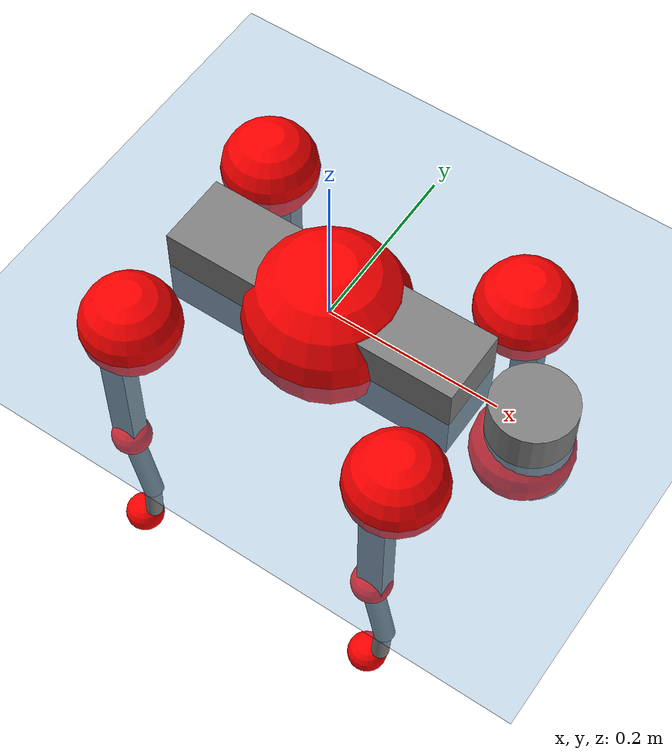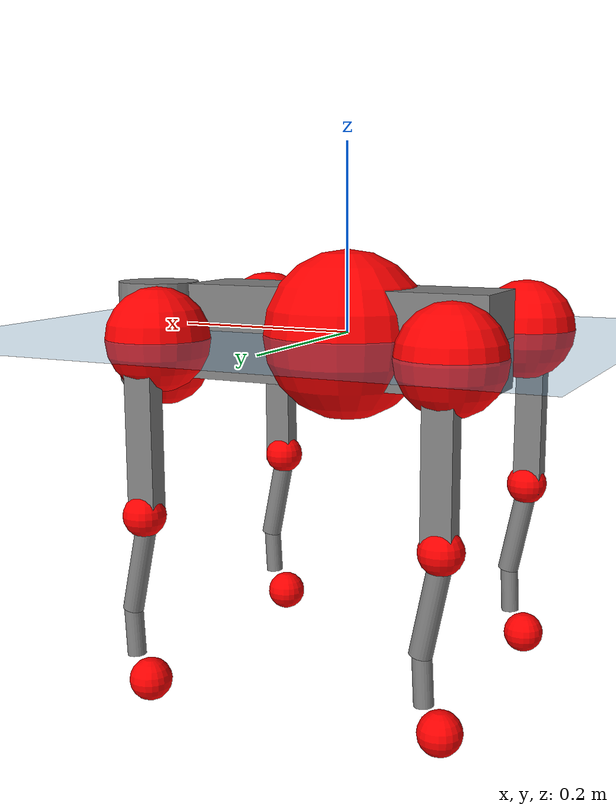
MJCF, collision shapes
<mujoco model="go2">
  <compiler angle="radian" assetdir="assets" balanceinertia="true" inertiafromgeom="false"/>

  <option timestep="0.005" density="1.2" viscosity="2e-05"/>

  <size nkey="1"/>

  <visual>
    <quality shadowsize="8192"/>
    <map shadowclip="0.5"/>
  </visual>

  <default>
    <default class="/">
      <geom contype="0" conaffinity="0" group="1" solref="-1000 -80"/>
      <site size="0.01 0.005 0.005" group="5"/>
      <general forcelimited="true" biastype="affine" gainprm="20" biasprm="0 -20 -0.5"/>
      <default class="go2">
        <joint armature="0.01" damping="0.01" frictionloss="0.2"/>
        <geom condim="1" margin="0.001"/>
        <default class="visual">
          <geom type="mesh" group="2"/>
        </default>
        <default class="collision">
          <geom group="3"/>
          <default class="foot">
            <geom size="0.022 0 0" condim="6" priority="1" friction="0.8 0.02 0.01" solimp="0.015 1 0.022"/>
          </default>
        </default>
        <default class="reward_collision_sphere">
          <geom group="5" rgba="1 0 0 1"/>
        </default>
      </default>
    </default>
  </default>

  <asset>
    <texture type="skybox" colorspace="auto" name="//unnamed_texture_0" builtin="gradient" rgb1="0.95 0.95 0.95" rgb2="0.95 0.95 0.95" width="100" height="600"/>
    <texture type="2d" colorspace="auto" name="texplane" builtin="checker" rgb1="0.345 0.575 0.748" rgb2="0.345 0.575 0.748" markrgb="1 1 1" width="512" height="512"/>
    <material name="MatPlane" class="/" texture="texplane" texuniform="true" texrepeat="2 2" specular="0.9"/>
    <material name="metal" class="/" rgba="0.9 0.95 0.95 1"/>
    <material name="black" class="/" rgba="0 0 0 1"/>
    <material name="white" class="/"/>
    <material name="gray" class="/" rgba="0.671705 0.692426 0.77427 1"/>
    <mesh name="base_0" class="/" file="base_0.obj"/>
    <mesh name="base_1" class="/" file="base_1.obj"/>
    <mesh name="base_2" class="/" file="base_2.obj"/>
    <mesh name="base_3" class="/" file="base_3.obj"/>
    <mesh name="base_4" class="/" file="base_4.obj"/>
    <mesh name="hip_0" class="/" file="hip_0.obj"/>
    <mesh name="hip_1" class="/" file="hip_1.obj"/>
    <mesh name="thigh_0" class="/" file="thigh_0.obj"/>
    <mesh name="thigh_1" class="/" file="thigh_1.obj"/>
    <mesh name="thigh_mirror_0" class="/" file="thigh_mirror_0.obj"/>
    <mesh name="thigh_mirror_1" class="/" file="thigh_mirror_1.obj"/>
    <mesh name="calf_0" class="/" file="calf_0.obj"/>
    <mesh name="calf_1" class="/" file="calf_1.obj"/>
    <mesh name="calf_mirror_0" class="/" file="calf_mirror_0.obj"/>
    <mesh name="calf_mirror_1" class="/" file="calf_mirror_1.obj"/>
    <mesh name="foot" class="/" file="foot.obj"/>
  </asset>

  <worldbody>
    <geom name="floor" class="/" size="100 100 0.125" type="plane" group="0" material="MatPlane"/>
    <light name="toplight_shadow" class="/" pos="0 0 5" dir="0.0990148 0.0990148 -0.990148" type="directional" ambient="0.04 0.04 0.04" diffuse="0.55 0.55 0.55" specular="0.12 0.12 0.12"/>
    <light name="toplight_fill" class="/" pos="0 0 5" dir="0.0990148 0.0990148 -0.990148" type="directional" castshadow="false" ambient="0.04 0.04 0.04" diffuse="0.3 0.3 0.3" specular="0.08 0.08 0.08"/>
    <body name="trunk" childclass="go2" pos="0.000921466 -0.00174324 -0.00259351" quat="1 -0.000365597 -0.000396042 -0.000664387">
      <inertial pos="0.0151532 0.00174691 -0.0032257" quat="-0.00416351 0.719544 -0.00886223 0.694378" mass="5.44433" diaginertia="0.046247 0.129315 0.0111012"/>
      <joint name="//unnamed_joint_0" type="free" armature="0" damping="0" frictionloss="0"/>
      <geom name="//unnamed_geom_1" class="visual" material="black" mesh="base_0"/>
      <geom name="//unnamed_geom_2" class="visual" material="black" mesh="base_1"/>
      <geom name="//unnamed_geom_3" class="visual" material="black" mesh="base_2"/>
      <geom name="//unnamed_geom_4" class="visual" material="white" mesh="base_3"/>
      <geom name="//unnamed_geom_5" class="visual" material="gray" mesh="base_4"/>
      <geom name="trunk_1" class="collision" size="0.171904 0.0427247 0.0520921" type="box"/>
      <geom name="trunk_2" class="collision" size="0.0456948 0.0411253" pos="0.239104 0 0.00849814" type="cylinder"/>
      <geom name="trunk_3" class="collision" size="0.0429531" pos="0.245816 0 -0.0509888"/>
      <geom name="//unnamed_geom_9" class="reward_collision_sphere" size="0.0913897"/>
      <geom name="//unnamed_geom_10" class="reward_collision_sphere" size="0.0548338" pos="0.234909 0 -0.0382416"/>
      <site name="imu" pos="-0.0232464 -0.00225803 0.0336248" size="0.00913897"/>
      <camera name="track" pos="0 -2.10583 0" quat="0.707107 0.707107 0 0" mode="trackcom"/>
      <camera name="ego_camera" pos="0.261756 0 0.0382416" quat="-0.5 -0.5 0.5 0.5"/>
      <body name="FL_hip" pos="0.160436 0.0475442 0.000226019" quat="1 0.000201731 -7.93765e-05 0.000129469">
        <inertial pos="-0.00378897 0.00169337 -0.000750447" quat="0.492953 0.500694 0.515776 0.490181" mass="0.523655" diaginertia="0.000377612 0.000763438 0.000219517"/>
        <joint name="FL_hip_joint" pos="0 0 0" axis="0.999941 -0.010614 -0.00228625" range="-1.09972 1.01843" armature="0.0094379" damping="0.0192199" frictionloss="0.189186"/>
        <geom name="//unnamed_geom_11" class="visual" material="metal" mesh="hip_0"/>
        <geom name="//unnamed_geom_12" class="visual" material="gray" mesh="hip_1"/>
        <geom name="//unnamed_geom_13" class="collision" size="0.0420392 0.0182779" pos="0 0.0842331 0" quat="0.707107 0.707107 0 0" type="cylinder"/>
        <geom name="//unnamed_geom_14" class="reward_collision_sphere" size="0.0548338" pos="0 0.073704 0"/>
        <body name="FL_thigh" pos="0.000566288 0.102851 0.000911832" quat="0.999999 0.000723069 0.000434335 0.000572647">
          <inertial pos="-0.00267474 -0.0256583 -0.0284234" quat="0.826372 0.0850801 -0.032718 0.555698" mass="0.898329" diaginertia="0.00245846 0.00734434 0.000386838"/>
          <joint name="FL_thigh_joint" pos="0 0 0" axis="0.00515399 0.999965 0.00661646" stiffness="0.0145175" range="-1.60393 3.50725" armature="0.0083399" damping="0.0163285" frictionloss="0.161228"/>
          <geom name="//unnamed_geom_15" class="visual" material="metal" mesh="thigh_0"/>
          <geom name="//unnamed_geom_16" class="visual" material="gray" mesh="thigh_1"/>
          <geom name="//unnamed_geom_17" class="collision" size="0.09733 0.0111952 0.0155362" pos="0 0 -0.0905052" quat="0.707107 0 0.707107 0" type="box"/>
          <body name="FL_calf" pos="0.00215015 0.00106016 -0.182678" quat="1 -1.82078e-05 -0.000182998 -2.44592e-05">
            <inertial pos="0.00555058 -0.00268144 -0.120622" quat="0.705752 0.00243843 -0.0161692 0.70827" mass="0.185693" diaginertia="0.00060724 0.00182725 2.28688e-05"/>
            <joint name="FL_calf_joint" pos="0 0 0" axis="0.00115385 0.999998 0.00156084" stiffness="0.00619999" range="-2.76594 -0.824913" armature="0.00794193" damping="0.0058266" frictionloss="0.20715"/>
            <geom name="//unnamed_geom_18" class="visual" material="gray" mesh="calf_0"/>
            <geom name="//unnamed_geom_19" class="visual" material="black" mesh="calf_1"/>
            <geom name="FL_calf0" class="collision" size="0.0109668 0.0548338" pos="0.0067117 0 -0.0509888" quat="0.994493 0 -0.104807 0" type="cylinder"/>
            <geom name="//unnamed_geom_21" class="collision" size="0.0100529 0.0297016" pos="0.0167792 0 -0.125772" quat="0.999688 0 0.0249974 0" type="cylinder"/>
            <geom name="//unnamed_geom_22" class="visual" pos="0 0 -0.18101" quat="1 0 0 0" material="black" mesh="foot"/>
            <geom name="FL_foot" class="foot" size="0.0163388" pos="-0.00167792 0 -0.18101"/>
            <geom name="//unnamed_geom_24" class="reward_collision_sphere" size="0.0228474"/>
            <geom name="//unnamed_geom_25" class="reward_collision_sphere" size="0.0228474" pos="-0.00167792 0 -0.18101"/>
            <site name="FL_foot" class="foot" pos="-0.00167792 0 -0.18101" size="0.00913897"/>
          </body>
        </body>
      </body>
      <body name="FR_hip" pos="0.164028 -0.0511355 -0.000342083" quat="1 -0.000315689 -0.000663943 0.000187471">
        <inertial pos="-0.00493268 0.000834302 -0.00310776" quat="0.497172 0.504012 0.499968 0.498822" mass="0.493929" diaginertia="0.000356444 0.000771198 0.000217296"/>
        <joint name="FR_hip_joint" pos="0 0 0" axis="0.999941 0.00847782 0.00683254" stiffness="0.0153116" range="-1.03521 1.05164" armature="0.00792627" damping="0.0186793" frictionloss="0.205484"/>
        <geom name="//unnamed_geom_26" class="visual" pos="0 1.76932e-09 7.58899e-08" quat="4.63268e-05 1 0 0" material="metal" mesh="hip_0"/>
        <geom name="//unnamed_geom_27" class="visual" pos="0 2.86828e-09 -1.87705e-07" quat="4.63268e-05 1 0 0" material="gray" mesh="hip_1"/>
        <geom name="//unnamed_geom_28" class="collision" size="0.0420392 0.0182779" pos="0 -0.0842331 0" quat="0.707107 0.707107 0 0" type="cylinder"/>
        <geom name="//unnamed_geom_29" class="reward_collision_sphere" size="0.0548338" pos="0 -0.073704 0"/>
        <body name="FR_thigh" pos="-0.00217781 -0.100727 0.00359783" quat="1 -2.44964e-06 2.76409e-05 1.70038e-05">
          <inertial pos="-0.000555397 0.0216879 -0.0287419" quat="0.562072 -0.0199049 0.0790901 0.823057" mass="0.902405" diaginertia="0.00240701 0.00750875 0.000386872"/>
          <joint name="FR_thigh_joint" pos="0 0 0" axis="-0.000709003 -0.999999 -0.00121707" range="-3.47469 1.61927" armature="0.00931642" damping="0.0071025" frictionloss="0.164201"/>
          <geom name="//unnamed_geom_30" class="visual" material="metal" mesh="thigh_mirror_0"/>
          <geom name="//unnamed_geom_31" class="visual" material="gray" mesh="thigh_mirror_1"/>
          <geom name="//unnamed_geom_32" class="collision" size="0.09733 0.0111952 0.0155362" pos="0 0 -0.0905052" quat="0.707107 0 0.707107 0" type="box"/>
          <body name="FR_calf" pos="-0.00347783 -0.000254678 -0.180606" quat="0.999999 3.67694e-05 0.00078828 -0.000673703">
            <inertial pos="0.00329277 0.00245367 -0.120947" quat="0.710933 -0.0122101 -0.00221511 0.70315" mass="0.18011" diaginertia="0.000583464 0.00188144 2.23633e-05"/>
            <joint name="FR_calf_joint" pos="0 0 0" axis="-0.00406303 -0.999968 0.00693362" range="0.88901 2.76777" armature="0.00862708" damping="0.0104343" frictionloss="0.157938"/>
            <geom name="//unnamed_geom_33" class="visual" material="gray" mesh="calf_mirror_0"/>
            <geom name="//unnamed_geom_34" class="visual" material="black" mesh="calf_mirror_1"/>
            <geom name="FR_calf0" class="collision" size="0.0118807 0.0548338" pos="0.00838962 0 -0.0509888" quat="0.995004 0 -0.0998334 0" type="cylinder"/>
            <geom name="//unnamed_geom_36" class="collision" size="0.0100529 0.0297016" pos="0.0167792 0 -0.125772" quat="0.999688 0 0.0249974 0" type="cylinder"/>
            <geom name="//unnamed_geom_37" class="visual" pos="0 0 -0.18101" quat="1 0 0 0" material="black" mesh="foot"/>
            <geom name="FR_foot" class="foot" size="0.0218209" pos="-0.00167792 0 -0.18101"/>
            <geom name="//unnamed_geom_39" class="reward_collision_sphere" size="0.0228474"/>
            <geom name="//unnamed_geom_40" class="reward_collision_sphere" size="0.0228474" pos="-0.00167792 0 -0.18101"/>
            <site name="FR_foot" class="foot" pos="-0.00167792 0 -0.18101" size="0.00913897"/>
          </body>
        </body>
      </body>
      <body name="RL_hip" pos="-0.163096 0.0513809 -0.0011782" quat="1 -0.000172959 0.000229597 4.74575e-05">
        <inertial pos="0.00625869 0.000605276 0.00200541" quat="0.504236 0.489986 0.502178 0.503465" mass="0.513828" diaginertia="0.000346996 0.000720991 0.000211377"/>
        <joint name="RL_hip_joint" pos="0 0 0" axis="-0.999686 -0.0202562 -0.014734" range="-1.04649 0.98911" armature="0.00819053" damping="0.0146015" frictionloss="0.191563"/>
        <geom name="//unnamed_geom_41" class="visual" pos="9.45352e-11 0 1.85311e-08" quat="4.63268e-05 0 1 0" material="metal" mesh="hip_0"/>
        <geom name="//unnamed_geom_42" class="visual" pos="1.53253e-10 0 1.64344e-08" quat="4.63268e-05 0 1 0" material="gray" mesh="hip_1"/>
        <geom name="//unnamed_geom_43" class="collision" size="0.0420392 0.0182779" pos="0 0.0842331 0" quat="0.707107 0.707107 0 0" type="cylinder"/>
        <geom name="//unnamed_geom_44" class="reward_collision_sphere" size="0.0548338" pos="0 0.073704 0"/>
        <body name="RL_thigh" pos="0.000233593 0.0972928 0.00262967" quat="1 -0.000374064 0.000133775 0.000138848">
          <inertial pos="-0.00354049 -0.0261951 -0.0251076" quat="0.831158 0.0803048 -0.0198925 0.549847" mass="0.89306" diaginertia="0.0023882 0.00774167 0.000386378"/>
          <joint name="RL_thigh_joint" pos="0 0 0" axis="-0.0117702 0.999931 -0.000646432" range="-0.539533 4.5535" armature="0.00996142" damping="0.0126495" frictionloss="0.161487"/>
          <geom name="//unnamed_geom_45" class="visual" material="metal" mesh="thigh_0"/>
          <geom name="//unnamed_geom_46" class="visual" material="gray" mesh="thigh_1"/>
          <geom name="//unnamed_geom_47" class="collision" size="0.09733 0.0111952 0.0155362" pos="0 0 -0.0905052" quat="0.707107 0 0.707107 0" type="box"/>
          <body name="RL_calf" pos="-0.00169819 -0.000983127 -0.180638" quat="0.999999 -2.17717e-05 -0.000185456 0.0012744">
            <inertial pos="0.00421755 -0.000299017 -0.12046" quat="0.710427 0.00011774 -0.00465252 0.703755" mass="0.181374" diaginertia="0.000619007 0.00189639 2.36958e-05"/>
            <joint name="RL_calf_joint" pos="0 0 0" axis="0.00180597 0.999997 0.00180438" range="-2.75801 -0.85326" armature="0.00819371" damping="0.0112647" frictionloss="0.165345"/>
            <geom name="//unnamed_geom_48" class="visual" material="gray" mesh="calf_0"/>
            <geom name="//unnamed_geom_49" class="visual" material="black" mesh="calf_1"/>
            <geom name="RL_calf0" class="collision" size="0.0118807 0.0548338" pos="0.00838962 0 -0.0509888" quat="0.995004 0 -0.0998334 0" type="cylinder"/>
            <geom name="//unnamed_geom_51" class="collision" size="0.0100529 0.0297016" pos="0.0167792 0 -0.125772" quat="0.999688 0 0.0249974 0" type="cylinder"/>
            <geom name="//unnamed_geom_52" class="visual" pos="0 0 -0.18101" quat="1 0 0 0" material="black" mesh="foot"/>
            <geom name="RL_foot" class="foot" size="0.0188606" pos="-0.00167792 0 -0.18101"/>
            <geom name="//unnamed_geom_54" class="reward_collision_sphere" size="0.0228474"/>
            <geom name="//unnamed_geom_55" class="reward_collision_sphere" size="0.0228474" pos="-0.00167792 0 -0.18101"/>
            <site name="RL_foot" class="foot" pos="-0.00167792 0 -0.18101" size="0.00913897"/>
          </body>
        </body>
      </body>
      <body name="RR_hip" pos="-0.160666 -0.0498449 0.00123924" quat="0.999999 0.000656868 -0.000463926 -0.00102844">
        <inertial pos="0.00413699 -0.00445221 -1.80451e-05" quat="0.50061 0.494051 0.500372 0.504907" mass="0.498199" diaginertia="0.000354844 0.000770792 0.00019912"/>
        <joint name="RR_hip_joint" pos="0 0 0" axis="-1 -7.20505e-05 3.20262e-05" range="-1.08174 1.0811" armature="0.00875736" damping="0.00734478" frictionloss="0.201773"/>
        <geom name="//unnamed_geom_56" class="visual" pos="-8.71282e-11 1.76932e-09 -5.73588e-08" quat="2.14617e-09 4.63268e-05 4.63268e-05 -1" material="metal" mesh="hip_0"/>
        <geom name="//unnamed_geom_57" class="visual" pos="-1.71574e-10 2.86828e-09 2.04139e-07" quat="2.14617e-09 4.63268e-05 4.63268e-05 -1" material="gray" mesh="hip_1"/>
        <geom name="//unnamed_geom_58" class="collision" size="0.0420392 0.0182779" pos="0 -0.0842331 0" quat="0.707107 0.707107 0 0" type="cylinder"/>
        <geom name="//unnamed_geom_59" class="reward_collision_sphere" size="0.0548338" pos="0 -0.073704 0"/>
        <body name="RR_thigh" pos="-0.00162936 -0.100124 -0.00381309" quat="0.999999 0.000173944 -0.000531814 -0.00116628">
          <inertial pos="-0.00287325 0.0224676 -0.0270673" quat="0.549294 -0.0244462 0.0880679 0.830616" mass="0.931449" diaginertia="0.0025219 0.00751514 0.000390667"/>
          <joint name="RR_thigh_joint" pos="0 0 0" axis="0.00516719 -0.999986 0.000649761" range="-4.54946 0.479539" armature="0.00995366" damping="0.0105897" frictionloss="0.184468"/>
          <geom name="//unnamed_geom_60" class="visual" material="metal" mesh="thigh_mirror_0"/>
          <geom name="//unnamed_geom_61" class="visual" material="gray" mesh="thigh_mirror_1"/>
          <geom name="//unnamed_geom_62" class="collision" size="0.09733 0.0111952 0.0155362" pos="0 0 -0.0905052" quat="0.707107 0 0.707107 0" type="box"/>
          <body name="RR_calf" pos="0.0022973 -0.0010519 -0.179204" quat="1 -0.000278117 0.000371375 -0.000196328">
            <inertial pos="0.00280707 0.00145335 -0.121134" quat="0.703804 -0.00242022 0.000502045 0.71039" mass="0.189336" diaginertia="0.00064232 0.00196656 2.36063e-05"/>
            <joint name="RR_calf_joint" pos="0 0 0" axis="0.00211519 -0.999997 0.00150969" stiffness="0.006369" range="0.830547 2.77575" armature="0.00900132" damping="0.00854539" frictionloss="0.204475"/>
            <geom name="//unnamed_geom_63" class="visual" material="gray" mesh="calf_mirror_0"/>
            <geom name="//unnamed_geom_64" class="visual" material="black" mesh="calf_mirror_1"/>
            <geom name="RR_calf0" class="collision" size="0.0118807 0.0548338" pos="0.00838962 0 -0.0509888" quat="0.995004 0 -0.0998334 0" type="cylinder"/>
            <geom name="//unnamed_geom_66" class="collision" size="0.0100529 0.0297016" pos="0.0167792 0 -0.125772" quat="0.999688 0 0.0249974 0" type="cylinder"/>
            <geom name="//unnamed_geom_67" class="visual" pos="0 0 -0.18101" quat="1 0 0 0" material="black" mesh="foot"/>
            <geom name="RR_foot" class="foot" size="0.0181085" pos="-0.00167792 0 -0.18101"/>
            <geom name="//unnamed_geom_69" class="reward_collision_sphere" size="0.0228474"/>
            <geom name="//unnamed_geom_70" class="reward_collision_sphere" size="0.0228474" pos="-0.00167792 0 -0.18101"/>
            <site name="RR_foot" class="foot" pos="-0.00167792 0 -0.18101" size="0.00913897"/>
          </body>
        </body>
      </body>
    </body>
  </worldbody>

  <contact>
    <pair class="/" geom1="floor" geom2="FL_foot" name="//unnamed_contact_0"/>
    <pair class="/" geom1="floor" geom2="FR_foot" name="//unnamed_contact_1"/>
    <pair class="/" geom1="floor" geom2="RL_foot" name="//unnamed_contact_2"/>
    <pair class="/" geom1="floor" geom2="RR_foot" name="//unnamed_contact_3"/>
  </contact>

  <actuator>
    <general name="FL_hip" class="/" joint="FL_hip_joint" forcerange="-23.7678 23.7678" gainprm="18.6117" biasprm="0 -18.6117 -0.452133"/>
    <general name="FL_thigh" class="/" joint="FL_thigh_joint" forcerange="-22.0299 22.0299" gainprm="18.6117" biasprm="0 -18.6117 -0.452133"/>
    <general name="FL_calf" class="/" joint="FL_calf_joint" forcerange="-40.313 40.313" gainprm="18.6117" biasprm="0 -18.6117 -0.452133"/>
    <general name="FR_hip" class="/" joint="FR_hip_joint" forcerange="-19.5732 19.5732" gainprm="18.6117" biasprm="0 -18.6117 -0.452133"/>
    <general name="FR_thigh" class="/" joint="FR_thigh_joint" forcerange="-22.216 22.216" gainprm="18.6117" biasprm="0 -18.6117 -0.452133"/>
    <general name="FR_calf" class="/" joint="FR_calf_joint" forcerange="-39.3601 39.3601" gainprm="18.6117" biasprm="0 -18.6117 -0.452133"/>
    <general name="RL_hip" class="/" joint="RL_hip_joint" forcerange="-19.5504 19.5504" gainprm="18.6117" biasprm="0 -18.6117 -0.452133"/>
    <general name="RL_thigh" class="/" joint="RL_thigh_joint" forcerange="-22.4364 22.4364" gainprm="18.6117" biasprm="0 -18.6117 -0.452133"/>
    <general name="RL_calf" class="/" joint="RL_calf_joint" forcerange="-45.8759 45.8759" gainprm="18.6117" biasprm="0 -18.6117 -0.452133"/>
    <general name="RR_hip" class="/" joint="RR_hip_joint" forcerange="-19.5791 19.5791" gainprm="18.6117" biasprm="0 -18.6117 -0.452133"/>
    <general name="RR_thigh" class="/" joint="RR_thigh_joint" forcerange="-23.8329 23.8329" gainprm="18.6117" biasprm="0 -18.6117 -0.452133"/>
    <general name="RR_calf" class="/" joint="RR_calf_joint" forcerange="-40.5902 40.5902" gainprm="18.6117" biasprm="0 -18.6117 -0.452133"/>
  </actuator>

  <sensor>
    <gyro site="imu" name="imu_angular_velocity"/>
    <velocimeter site="imu" name="imu_linear_velocity"/>
    <framelinvel objtype="site" objname="FL_foot" name="FL_foot_global_linear_velocity"/>
    <framelinvel objtype="site" objname="FR_foot" name="FR_foot_global_linear_velocity"/>
    <framelinvel objtype="site" objname="RL_foot" name="RL_foot_global_linear_velocity"/>
    <framelinvel objtype="site" objname="RR_foot" name="RR_foot_global_linear_velocity"/>
  </sensor>

  <keyframe>
    <key name="home" qpos="0 0 0.325 1 0 0 0 0.1 0.8 -1.5 -0.1 -0.8 1.5 -0.1 0.8 -1.5 0.1 -0.8 1.5"/>
  </keyframe>
</mujoco>
